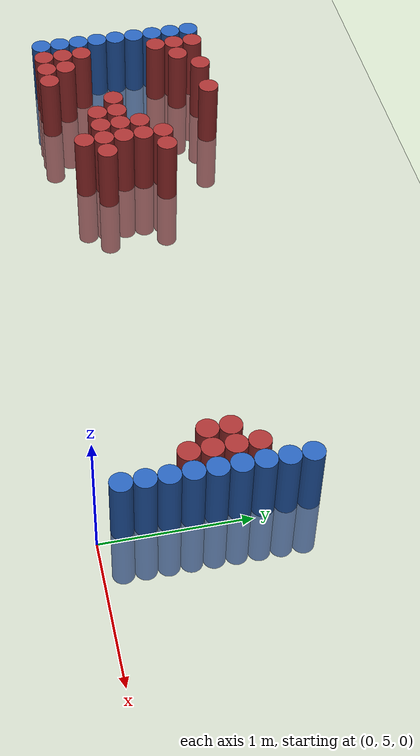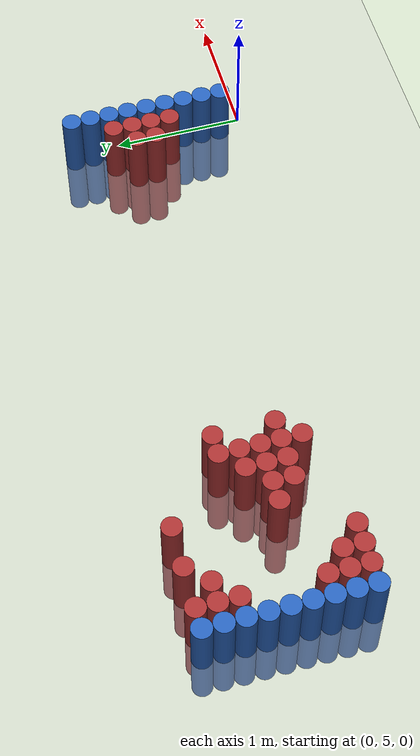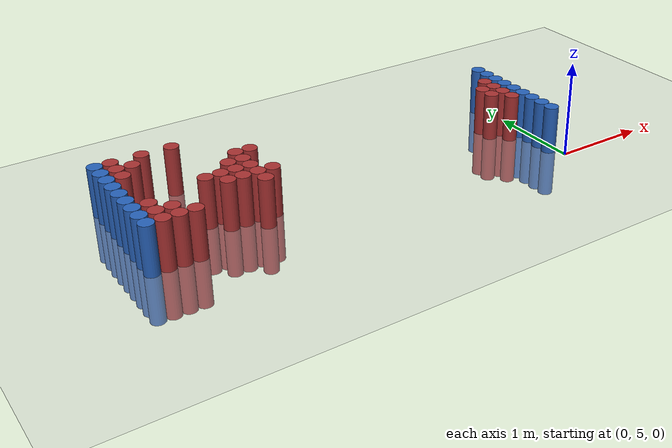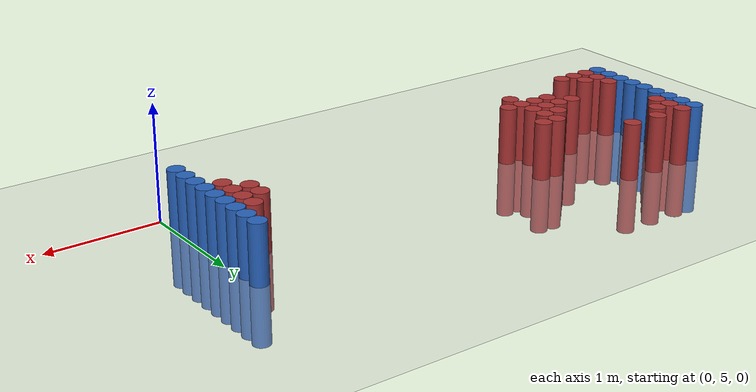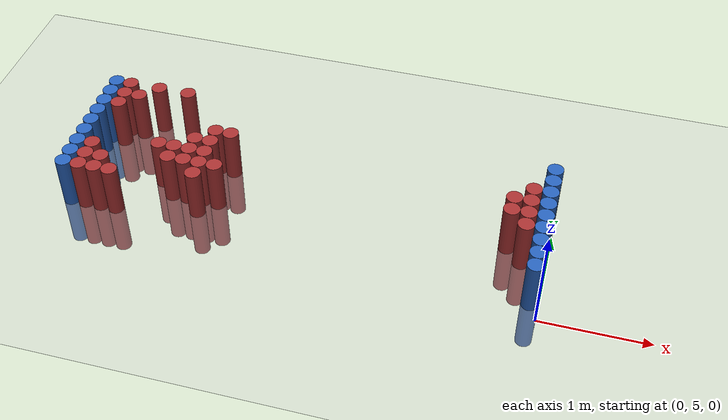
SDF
<sdf version="1.6">
 <world name="default">
  <model name="ground_plane">
   <static>1</static>
   <link name="link">
    <collision name="collision">
     <geometry><plane><normal>0 0 1</normal><size>100 100</size></plane></geometry>
     <surface><friction><ode><mu>100</mu><mu2>50</mu2></ode></friction></surface>
    </collision>
    <visual name="visual">
     <cast_shadows>0</cast_shadows>
     <geometry><plane><normal>0 0 1</normal><size>100 100</size></plane></geometry>
     <material>
      <script><uri>file://media/materials/scripts/gazebo.material</uri><name>Gazebo/Grey</name></script>
     </material>
    </visual>
   </link>
  </model>
  <model name="unit_cylinder_97">
   <static>1</static>
   <pose>-4.425000 5.325000 0.000000 0.000000 0.000000 0.000000</pose>
   <link name="link">
    <inertial>
     <mass>1</mass>
     <inertia><ixx>0.145833</ixx><ixy>0</ixy><ixz>0</ixz><iyy>0.145833</iyy><iyz>0</iyz><izz>0.125</izz></inertia>
    </inertial>
    <collision name="collision">
     <geometry><cylinder><radius>0.075000</radius><length>1</length></cylinder></geometry>
    </collision>
    <visual name="visual">
     <geometry><cylinder><radius>0.075000</radius><length>1</length></cylinder></geometry>
     <material>
      <ambient>0.152000 0.379000 0.720000 1</ambient>
      <diffuse>0.152000 0.379000 0.720000 1</diffuse>
     </material>
     <material>
      <script><name>Gazebo/Grey</name><uri>file://media/materials/scripts/gazebo.material</uri></script>
     </material>
    </visual>
   </link>
  </model>
  <model name="unit_cylinder_98">
   <static>1</static>
   <pose>-4.425000 5.475000 0.000000 0.000000 0.000000 0.000000</pose>
   <link name="link">
    <inertial>
     <mass>1</mass>
     <inertia><ixx>0.145833</ixx><ixy>0</ixy><ixz>0</ixz><iyy>0.145833</iyy><iyz>0</iyz><izz>0.125</izz></inertia>
    </inertial>
    <collision name="collision">
     <geometry><cylinder><radius>0.075000</radius><length>1</length></cylinder></geometry>
    </collision>
    <visual name="visual">
     <geometry><cylinder><radius>0.075000</radius><length>1</length></cylinder></geometry>
     <material>
      <ambient>0.152000 0.379000 0.720000 1</ambient>
      <diffuse>0.152000 0.379000 0.720000 1</diffuse>
     </material>
     <material>
      <script><name>Gazebo/Grey</name><uri>file://media/materials/scripts/gazebo.material</uri></script>
     </material>
    </visual>
   </link>
  </model>
  <model name="unit_cylinder_99">
   <static>1</static>
   <pose>-4.425000 5.625000 0.000000 0.000000 0.000000 0.000000</pose>
   <link name="link">
    <inertial>
     <mass>1</mass>
     <inertia><ixx>0.145833</ixx><ixy>0</ixy><ixz>0</ixz><iyy>0.145833</iyy><iyz>0</iyz><izz>0.125</izz></inertia>
    </inertial>
    <collision name="collision">
     <geometry><cylinder><radius>0.075000</radius><length>1</length></cylinder></geometry>
    </collision>
    <visual name="visual">
     <geometry><cylinder><radius>0.075000</radius><length>1</length></cylinder></geometry>
     <material>
      <ambient>0.152000 0.379000 0.720000 1</ambient>
      <diffuse>0.152000 0.379000 0.720000 1</diffuse>
     </material>
     <material>
      <script><name>Gazebo/Grey</name><uri>file://media/materials/scripts/gazebo.material</uri></script>
     </material>
    </visual>
   </link>
  </model>
  <model name="unit_cylinder_100">
   <static>1</static>
   <pose>-4.425000 5.775000 0.000000 0.000000 0.000000 0.000000</pose>
   <link name="link">
    <inertial>
     <mass>1</mass>
     <inertia><ixx>0.145833</ixx><ixy>0</ixy><ixz>0</ixz><iyy>0.145833</iyy><iyz>0</iyz><izz>0.125</izz></inertia>
    </inertial>
    <collision name="collision">
     <geometry><cylinder><radius>0.075000</radius><length>1</length></cylinder></geometry>
    </collision>
    <visual name="visual">
     <geometry><cylinder><radius>0.075000</radius><length>1</length></cylinder></geometry>
     <material>
      <ambient>0.152000 0.379000 0.720000 1</ambient>
      <diffuse>0.152000 0.379000 0.720000 1</diffuse>
     </material>
     <material>
      <script><name>Gazebo/Grey</name><uri>file://media/materials/scripts/gazebo.material</uri></script>
     </material>
    </visual>
   </link>
  </model>
  <model name="unit_cylinder_101">
   <static>1</static>
   <pose>-4.425000 5.925000 0.000000 0.000000 0.000000 0.000000</pose>
   <link name="link">
    <inertial>
     <mass>1</mass>
     <inertia><ixx>0.145833</ixx><ixy>0</ixy><ixz>0</ixz><iyy>0.145833</iyy><iyz>0</iyz><izz>0.125</izz></inertia>
    </inertial>
    <collision name="collision">
     <geometry><cylinder><radius>0.075000</radius><length>1</length></cylinder></geometry>
    </collision>
    <visual name="visual">
     <geometry><cylinder><radius>0.075000</radius><length>1</length></cylinder></geometry>
     <material>
      <ambient>0.152000 0.379000 0.720000 1</ambient>
      <diffuse>0.152000 0.379000 0.720000 1</diffuse>
     </material>
     <material>
      <script><name>Gazebo/Grey</name><uri>file://media/materials/scripts/gazebo.material</uri></script>
     </material>
    </visual>
   </link>
  </model>
  <model name="unit_cylinder_102">
   <static>1</static>
   <pose>-4.425000 6.075000 0.000000 0.000000 0.000000 0.000000</pose>
   <link name="link">
    <inertial>
     <mass>1</mass>
     <inertia><ixx>0.145833</ixx><ixy>0</ixy><ixz>0</ixz><iyy>0.145833</iyy><iyz>0</iyz><izz>0.125</izz></inertia>
    </inertial>
    <collision name="collision">
     <geometry><cylinder><radius>0.075000</radius><length>1</length></cylinder></geometry>
    </collision>
    <visual name="visual">
     <geometry><cylinder><radius>0.075000</radius><length>1</length></cylinder></geometry>
     <material>
      <ambient>0.152000 0.379000 0.720000 1</ambient>
      <diffuse>0.152000 0.379000 0.720000 1</diffuse>
     </material>
     <material>
      <script><name>Gazebo/Grey</name><uri>file://media/materials/scripts/gazebo.material</uri></script>
     </material>
    </visual>
   </link>
  </model>
  <model name="unit_cylinder_103">
   <static>1</static>
   <pose>-4.425000 6.225000 0.000000 0.000000 0.000000 0.000000</pose>
   <link name="link">
    <inertial>
     <mass>1</mass>
     <inertia><ixx>0.145833</ixx><ixy>0</ixy><ixz>0</ixz><iyy>0.145833</iyy><iyz>0</iyz><izz>0.125</izz></inertia>
    </inertial>
    <collision name="collision">
     <geometry><cylinder><radius>0.075000</radius><length>1</length></cylinder></geometry>
    </collision>
    <visual name="visual">
     <geometry><cylinder><radius>0.075000</radius><length>1</length></cylinder></geometry>
     <material>
      <ambient>0.152000 0.379000 0.720000 1</ambient>
      <diffuse>0.152000 0.379000 0.720000 1</diffuse>
     </material>
     <material>
      <script><name>Gazebo/Grey</name><uri>file://media/materials/scripts/gazebo.material</uri></script>
     </material>
    </visual>
   </link>
  </model>
  <model name="unit_cylinder_104">
   <static>1</static>
   <pose>-4.425000 6.375000 0.000000 0.000000 0.000000 0.000000</pose>
   <link name="link">
    <inertial>
     <mass>1</mass>
     <inertia><ixx>0.145833</ixx><ixy>0</ixy><ixz>0</ixz><iyy>0.145833</iyy><iyz>0</iyz><izz>0.125</izz></inertia>
    </inertial>
    <collision name="collision">
     <geometry><cylinder><radius>0.075000</radius><length>1</length></cylinder></geometry>
    </collision>
    <visual name="visual">
     <geometry><cylinder><radius>0.075000</radius><length>1</length></cylinder></geometry>
     <material>
      <ambient>0.152000 0.379000 0.720000 1</ambient>
      <diffuse>0.152000 0.379000 0.720000 1</diffuse>
     </material>
     <material>
      <script><name>Gazebo/Grey</name><uri>file://media/materials/scripts/gazebo.material</uri></script>
     </material>
    </visual>
   </link>
  </model>
  <model name="unit_cylinder_105">
   <static>1</static>
   <pose>-4.425000 6.525000 0.000000 0.000000 0.000000 0.000000</pose>
   <link name="link">
    <inertial>
     <mass>1</mass>
     <inertia><ixx>0.145833</ixx><ixy>0</ixy><ixz>0</ixz><iyy>0.145833</iyy><iyz>0</iyz><izz>0.125</izz></inertia>
    </inertial>
    <collision name="collision">
     <geometry><cylinder><radius>0.075000</radius><length>1</length></cylinder></geometry>
    </collision>
    <visual name="visual">
     <geometry><cylinder><radius>0.075000</radius><length>1</length></cylinder></geometry>
     <material>
      <ambient>0.152000 0.379000 0.720000 1</ambient>
      <diffuse>0.152000 0.379000 0.720000 1</diffuse>
     </material>
     <material>
      <script><name>Gazebo/Grey</name><uri>file://media/materials/scripts/gazebo.material</uri></script>
     </material>
    </visual>
   </link>
  </model>
  <model name="unit_cylinder_127">
   <static>1</static>
   <pose>-4.275000 5.325000 0.000000 0.000000 0.000000 0.000000</pose>
   <link name="link">
    <inertial>
     <mass>1</mass>
     <inertia><ixx>0.145833</ixx><ixy>0</ixy><ixz>0</ixz><iyy>0.145833</iyy><iyz>0</iyz><izz>0.125</izz></inertia>
    </inertial>
    <collision name="collision">
     <geometry><cylinder><radius>0.075000</radius><length>1</length></cylinder></geometry>
    </collision>
    <visual name="visual">
     <geometry><cylinder><radius>0.075000</radius><length>1</length></cylinder></geometry>
     <material>
      <ambient>0.648000 0.192000 0.192000 1</ambient>
      <diffuse>0.648000 0.192000 0.192000 1</diffuse>
     </material>
     <material>
      <script><name>Gazebo/Grey</name><uri>file://media/materials/scripts/gazebo.material</uri></script>
     </material>
    </visual>
   </link>
  </model>
  <model name="unit_cylinder_128">
   <static>1</static>
   <pose>-4.275000 5.475000 0.000000 0.000000 0.000000 0.000000</pose>
   <link name="link">
    <inertial>
     <mass>1</mass>
     <inertia><ixx>0.145833</ixx><ixy>0</ixy><ixz>0</ixz><iyy>0.145833</iyy><iyz>0</iyz><izz>0.125</izz></inertia>
    </inertial>
    <collision name="collision">
     <geometry><cylinder><radius>0.075000</radius><length>1</length></cylinder></geometry>
    </collision>
    <visual name="visual">
     <geometry><cylinder><radius>0.075000</radius><length>1</length></cylinder></geometry>
     <material>
      <ambient>0.648000 0.192000 0.192000 1</ambient>
      <diffuse>0.648000 0.192000 0.192000 1</diffuse>
     </material>
     <material>
      <script><name>Gazebo/Grey</name><uri>file://media/materials/scripts/gazebo.material</uri></script>
     </material>
    </visual>
   </link>
  </model>
  <model name="unit_cylinder_129">
   <static>1</static>
   <pose>-4.275000 5.625000 0.000000 0.000000 0.000000 0.000000</pose>
   <link name="link">
    <inertial>
     <mass>1</mass>
     <inertia><ixx>0.145833</ixx><ixy>0</ixy><ixz>0</ixz><iyy>0.145833</iyy><iyz>0</iyz><izz>0.125</izz></inertia>
    </inertial>
    <collision name="collision">
     <geometry><cylinder><radius>0.075000</radius><length>1</length></cylinder></geometry>
    </collision>
    <visual name="visual">
     <geometry><cylinder><radius>0.075000</radius><length>1</length></cylinder></geometry>
     <material>
      <ambient>0.648000 0.192000 0.192000 1</ambient>
      <diffuse>0.648000 0.192000 0.192000 1</diffuse>
     </material>
     <material>
      <script><name>Gazebo/Grey</name><uri>file://media/materials/scripts/gazebo.material</uri></script>
     </material>
    </visual>
   </link>
  </model>
  <model name="unit_cylinder_130">
   <static>1</static>
   <pose>-4.275000 6.225000 0.000000 0.000000 0.000000 0.000000</pose>
   <link name="link">
    <inertial>
     <mass>1</mass>
     <inertia><ixx>0.145833</ixx><ixy>0</ixy><ixz>0</ixz><iyy>0.145833</iyy><iyz>0</iyz><izz>0.125</izz></inertia>
    </inertial>
    <collision name="collision">
     <geometry><cylinder><radius>0.075000</radius><length>1</length></cylinder></geometry>
    </collision>
    <visual name="visual">
     <geometry><cylinder><radius>0.075000</radius><length>1</length></cylinder></geometry>
     <material>
      <ambient>0.648000 0.192000 0.192000 1</ambient>
      <diffuse>0.648000 0.192000 0.192000 1</diffuse>
     </material>
     <material>
      <script><name>Gazebo/Grey</name><uri>file://media/materials/scripts/gazebo.material</uri></script>
     </material>
    </visual>
   </link>
  </model>
  <model name="unit_cylinder_131">
   <static>1</static>
   <pose>-4.275000 6.375000 0.000000 0.000000 0.000000 0.000000</pose>
   <link name="link">
    <inertial>
     <mass>1</mass>
     <inertia><ixx>0.145833</ixx><ixy>0</ixy><ixz>0</ixz><iyy>0.145833</iyy><iyz>0</iyz><izz>0.125</izz></inertia>
    </inertial>
    <collision name="collision">
     <geometry><cylinder><radius>0.075000</radius><length>1</length></cylinder></geometry>
    </collision>
    <visual name="visual">
     <geometry><cylinder><radius>0.075000</radius><length>1</length></cylinder></geometry>
     <material>
      <ambient>0.648000 0.192000 0.192000 1</ambient>
      <diffuse>0.648000 0.192000 0.192000 1</diffuse>
     </material>
     <material>
      <script><name>Gazebo/Grey</name><uri>file://media/materials/scripts/gazebo.material</uri></script>
     </material>
    </visual>
   </link>
  </model>
  <model name="unit_cylinder_132">
   <static>1</static>
   <pose>-4.275000 6.525000 0.000000 0.000000 0.000000 0.000000</pose>
   <link name="link">
    <inertial>
     <mass>1</mass>
     <inertia><ixx>0.145833</ixx><ixy>0</ixy><ixz>0</ixz><iyy>0.145833</iyy><iyz>0</iyz><izz>0.125</izz></inertia>
    </inertial>
    <collision name="collision">
     <geometry><cylinder><radius>0.075000</radius><length>1</length></cylinder></geometry>
    </collision>
    <visual name="visual">
     <geometry><cylinder><radius>0.075000</radius><length>1</length></cylinder></geometry>
     <material>
      <ambient>0.648000 0.192000 0.192000 1</ambient>
      <diffuse>0.648000 0.192000 0.192000 1</diffuse>
     </material>
     <material>
      <script><name>Gazebo/Grey</name><uri>file://media/materials/scripts/gazebo.material</uri></script>
     </material>
    </visual>
   </link>
  </model>
  <model name="unit_cylinder_137">
   <static>1</static>
   <pose>-4.125000 5.325000 0.000000 0.000000 0.000000 0.000000</pose>
   <link name="link">
    <inertial>
     <mass>1</mass>
     <inertia><ixx>0.145833</ixx><ixy>0</ixy><ixz>0</ixz><iyy>0.145833</iyy><iyz>0</iyz><izz>0.125</izz></inertia>
    </inertial>
    <collision name="collision">
     <geometry><cylinder><radius>0.075000</radius><length>1</length></cylinder></geometry>
    </collision>
    <visual name="visual">
     <geometry><cylinder><radius>0.075000</radius><length>1</length></cylinder></geometry>
     <material>
      <ambient>0.648000 0.192000 0.192000 1</ambient>
      <diffuse>0.648000 0.192000 0.192000 1</diffuse>
     </material>
     <material>
      <script><name>Gazebo/Grey</name><uri>file://media/materials/scripts/gazebo.material</uri></script>
     </material>
    </visual>
   </link>
  </model>
  <model name="unit_cylinder_138">
   <static>1</static>
   <pose>-4.125000 5.475000 0.000000 0.000000 0.000000 0.000000</pose>
   <link name="link">
    <inertial>
     <mass>1</mass>
     <inertia><ixx>0.145833</ixx><ixy>0</ixy><ixz>0</ixz><iyy>0.145833</iyy><iyz>0</iyz><izz>0.125</izz></inertia>
    </inertial>
    <collision name="collision">
     <geometry><cylinder><radius>0.075000</radius><length>1</length></cylinder></geometry>
    </collision>
    <visual name="visual">
     <geometry><cylinder><radius>0.075000</radius><length>1</length></cylinder></geometry>
     <material>
      <ambient>0.648000 0.192000 0.192000 1</ambient>
      <diffuse>0.648000 0.192000 0.192000 1</diffuse>
     </material>
     <material>
      <script><name>Gazebo/Grey</name><uri>file://media/materials/scripts/gazebo.material</uri></script>
     </material>
    </visual>
   </link>
  </model>
  <model name="unit_cylinder_139">
   <static>1</static>
   <pose>-4.125000 6.375000 0.000000 0.000000 0.000000 0.000000</pose>
   <link name="link">
    <inertial>
     <mass>1</mass>
     <inertia><ixx>0.145833</ixx><ixy>0</ixy><ixz>0</ixz><iyy>0.145833</iyy><iyz>0</iyz><izz>0.125</izz></inertia>
    </inertial>
    <collision name="collision">
     <geometry><cylinder><radius>0.075000</radius><length>1</length></cylinder></geometry>
    </collision>
    <visual name="visual">
     <geometry><cylinder><radius>0.075000</radius><length>1</length></cylinder></geometry>
     <material>
      <ambient>0.648000 0.192000 0.192000 1</ambient>
      <diffuse>0.648000 0.192000 0.192000 1</diffuse>
     </material>
     <material>
      <script><name>Gazebo/Grey</name><uri>file://media/materials/scripts/gazebo.material</uri></script>
     </material>
    </visual>
   </link>
  </model>
  <model name="unit_cylinder_142">
   <static>1</static>
   <pose>-3.975000 5.325000 0.000000 0.000000 0.000000 0.000000</pose>
   <link name="link">
    <inertial>
     <mass>1</mass>
     <inertia><ixx>0.145833</ixx><ixy>0</ixy><ixz>0</ixz><iyy>0.145833</iyy><iyz>0</iyz><izz>0.125</izz></inertia>
    </inertial>
    <collision name="collision">
     <geometry><cylinder><radius>0.075000</radius><length>1</length></cylinder></geometry>
    </collision>
    <visual name="visual">
     <geometry><cylinder><radius>0.075000</radius><length>1</length></cylinder></geometry>
     <material>
      <ambient>0.648000 0.192000 0.192000 1</ambient>
      <diffuse>0.648000 0.192000 0.192000 1</diffuse>
     </material>
     <material>
      <script><name>Gazebo/Grey</name><uri>file://media/materials/scripts/gazebo.material</uri></script>
     </material>
    </visual>
   </link>
  </model>
  <model name="unit_cylinder_143">
   <static>1</static>
   <pose>-3.975000 6.525000 0.000000 0.000000 0.000000 0.000000</pose>
   <link name="link">
    <inertial>
     <mass>1</mass>
     <inertia><ixx>0.145833</ixx><ixy>0</ixy><ixz>0</ixz><iyy>0.145833</iyy><iyz>0</iyz><izz>0.125</izz></inertia>
    </inertial>
    <collision name="collision">
     <geometry><cylinder><radius>0.075000</radius><length>1</length></cylinder></geometry>
    </collision>
    <visual name="visual">
     <geometry><cylinder><radius>0.075000</radius><length>1</length></cylinder></geometry>
     <material>
      <ambient>0.648000 0.192000 0.192000 1</ambient>
      <diffuse>0.648000 0.192000 0.192000 1</diffuse>
     </material>
     <material>
      <script><name>Gazebo/Grey</name><uri>file://media/materials/scripts/gazebo.material</uri></script>
     </material>
    </visual>
   </link>
  </model>
  <model name="unit_cylinder_149">
   <static>1</static>
   <pose>-3.675000 5.775000 0.000000 0.000000 0.000000 0.000000</pose>
   <link name="link">
    <inertial>
     <mass>1</mass>
     <inertia><ixx>0.145833</ixx><ixy>0</ixy><ixz>0</ixz><iyy>0.145833</iyy><iyz>0</iyz><izz>0.125</izz></inertia>
    </inertial>
    <collision name="collision">
     <geometry><cylinder><radius>0.075000</radius><length>1</length></cylinder></geometry>
    </collision>
    <visual name="visual">
     <geometry><cylinder><radius>0.075000</radius><length>1</length></cylinder></geometry>
     <material>
      <ambient>0.648000 0.192000 0.192000 1</ambient>
      <diffuse>0.648000 0.192000 0.192000 1</diffuse>
     </material>
     <material>
      <script><name>Gazebo/Grey</name><uri>file://media/materials/scripts/gazebo.material</uri></script>
     </material>
    </visual>
   </link>
  </model>
  <model name="unit_cylinder_150">
   <static>1</static>
   <pose>-3.675000 6.525000 0.000000 0.000000 0.000000 0.000000</pose>
   <link name="link">
    <inertial>
     <mass>1</mass>
     <inertia><ixx>0.145833</ixx><ixy>0</ixy><ixz>0</ixz><iyy>0.145833</iyy><iyz>0</iyz><izz>0.125</izz></inertia>
    </inertial>
    <collision name="collision">
     <geometry><cylinder><radius>0.075000</radius><length>1</length></cylinder></geometry>
    </collision>
    <visual name="visual">
     <geometry><cylinder><radius>0.075000</radius><length>1</length></cylinder></geometry>
     <material>
      <ambient>0.648000 0.192000 0.192000 1</ambient>
      <diffuse>0.648000 0.192000 0.192000 1</diffuse>
     </material>
     <material>
      <script><name>Gazebo/Grey</name><uri>file://media/materials/scripts/gazebo.material</uri></script>
     </material>
    </visual>
   </link>
  </model>
  <model name="unit_cylinder_153">
   <static>1</static>
   <pose>-3.525000 5.625000 0.000000 0.000000 0.000000 0.000000</pose>
   <link name="link">
    <inertial>
     <mass>1</mass>
     <inertia><ixx>0.145833</ixx><ixy>0</ixy><ixz>0</ixz><iyy>0.145833</iyy><iyz>0</iyz><izz>0.125</izz></inertia>
    </inertial>
    <collision name="collision">
     <geometry><cylinder><radius>0.075000</radius><length>1</length></cylinder></geometry>
    </collision>
    <visual name="visual">
     <geometry><cylinder><radius>0.075000</radius><length>1</length></cylinder></geometry>
     <material>
      <ambient>0.648000 0.192000 0.192000 1</ambient>
      <diffuse>0.648000 0.192000 0.192000 1</diffuse>
     </material>
     <material>
      <script><name>Gazebo/Grey</name><uri>file://media/materials/scripts/gazebo.material</uri></script>
     </material>
    </visual>
   </link>
  </model>
  <model name="unit_cylinder_154">
   <static>1</static>
   <pose>-3.525000 5.775000 0.000000 0.000000 0.000000 0.000000</pose>
   <link name="link">
    <inertial>
     <mass>1</mass>
     <inertia><ixx>0.145833</ixx><ixy>0</ixy><ixz>0</ixz><iyy>0.145833</iyy><iyz>0</iyz><izz>0.125</izz></inertia>
    </inertial>
    <collision name="collision">
     <geometry><cylinder><radius>0.075000</radius><length>1</length></cylinder></geometry>
    </collision>
    <visual name="visual">
     <geometry><cylinder><radius>0.075000</radius><length>1</length></cylinder></geometry>
     <material>
      <ambient>0.648000 0.192000 0.192000 1</ambient>
      <diffuse>0.648000 0.192000 0.192000 1</diffuse>
     </material>
     <material>
      <script><name>Gazebo/Grey</name><uri>file://media/materials/scripts/gazebo.material</uri></script>
     </material>
    </visual>
   </link>
  </model>
  <model name="unit_cylinder_156">
   <static>1</static>
   <pose>-3.375000 5.625000 0.000000 0.000000 0.000000 0.000000</pose>
   <link name="link">
    <inertial>
     <mass>1</mass>
     <inertia><ixx>0.145833</ixx><ixy>0</ixy><ixz>0</ixz><iyy>0.145833</iyy><iyz>0</iyz><izz>0.125</izz></inertia>
    </inertial>
    <collision name="collision">
     <geometry><cylinder><radius>0.075000</radius><length>1</length></cylinder></geometry>
    </collision>
    <visual name="visual">
     <geometry><cylinder><radius>0.075000</radius><length>1</length></cylinder></geometry>
     <material>
      <ambient>0.648000 0.192000 0.192000 1</ambient>
      <diffuse>0.648000 0.192000 0.192000 1</diffuse>
     </material>
     <material>
      <script><name>Gazebo/Grey</name><uri>file://media/materials/scripts/gazebo.material</uri></script>
     </material>
    </visual>
   </link>
  </model>
  <model name="unit_cylinder_157">
   <static>1</static>
   <pose>-3.375000 5.775000 0.000000 0.000000 0.000000 0.000000</pose>
   <link name="link">
    <inertial>
     <mass>1</mass>
     <inertia><ixx>0.145833</ixx><ixy>0</ixy><ixz>0</ixz><iyy>0.145833</iyy><iyz>0</iyz><izz>0.125</izz></inertia>
    </inertial>
    <collision name="collision">
     <geometry><cylinder><radius>0.075000</radius><length>1</length></cylinder></geometry>
    </collision>
    <visual name="visual">
     <geometry><cylinder><radius>0.075000</radius><length>1</length></cylinder></geometry>
     <material>
      <ambient>0.648000 0.192000 0.192000 1</ambient>
      <diffuse>0.648000 0.192000 0.192000 1</diffuse>
     </material>
     <material>
      <script><name>Gazebo/Grey</name><uri>file://media/materials/scripts/gazebo.material</uri></script>
     </material>
    </visual>
   </link>
  </model>
  <model name="unit_cylinder_158">
   <static>1</static>
   <pose>-3.375000 5.925000 0.000000 0.000000 0.000000 0.000000</pose>
   <link name="link">
    <inertial>
     <mass>1</mass>
     <inertia><ixx>0.145833</ixx><ixy>0</ixy><ixz>0</ixz><iyy>0.145833</iyy><iyz>0</iyz><izz>0.125</izz></inertia>
    </inertial>
    <collision name="collision">
     <geometry><cylinder><radius>0.075000</radius><length>1</length></cylinder></geometry>
    </collision>
    <visual name="visual">
     <geometry><cylinder><radius>0.075000</radius><length>1</length></cylinder></geometry>
     <material>
      <ambient>0.648000 0.192000 0.192000 1</ambient>
      <diffuse>0.648000 0.192000 0.192000 1</diffuse>
     </material>
     <material>
      <script><name>Gazebo/Grey</name><uri>file://media/materials/scripts/gazebo.material</uri></script>
     </material>
    </visual>
   </link>
  </model>
  <model name="unit_cylinder_161">
   <static>1</static>
   <pose>-3.225000 5.475000 0.000000 0.000000 0.000000 0.000000</pose>
   <link name="link">
    <inertial>
     <mass>1</mass>
     <inertia><ixx>0.145833</ixx><ixy>0</ixy><ixz>0</ixz><iyy>0.145833</iyy><iyz>0</iyz><izz>0.125</izz></inertia>
    </inertial>
    <collision name="collision">
     <geometry><cylinder><radius>0.075000</radius><length>1</length></cylinder></geometry>
    </collision>
    <visual name="visual">
     <geometry><cylinder><radius>0.075000</radius><length>1</length></cylinder></geometry>
     <material>
      <ambient>0.648000 0.192000 0.192000 1</ambient>
      <diffuse>0.648000 0.192000 0.192000 1</diffuse>
     </material>
     <material>
      <script><name>Gazebo/Grey</name><uri>file://media/materials/scripts/gazebo.material</uri></script>
     </material>
    </visual>
   </link>
  </model>
  <model name="unit_cylinder_162">
   <static>1</static>
   <pose>-3.225000 5.625000 0.000000 0.000000 0.000000 0.000000</pose>
   <link name="link">
    <inertial>
     <mass>1</mass>
     <inertia><ixx>0.145833</ixx><ixy>0</ixy><ixz>0</ixz><iyy>0.145833</iyy><iyz>0</iyz><izz>0.125</izz></inertia>
    </inertial>
    <collision name="collision">
     <geometry><cylinder><radius>0.075000</radius><length>1</length></cylinder></geometry>
    </collision>
    <visual name="visual">
     <geometry><cylinder><radius>0.075000</radius><length>1</length></cylinder></geometry>
     <material>
      <ambient>0.648000 0.192000 0.192000 1</ambient>
      <diffuse>0.648000 0.192000 0.192000 1</diffuse>
     </material>
     <material>
      <script><name>Gazebo/Grey</name><uri>file://media/materials/scripts/gazebo.material</uri></script>
     </material>
    </visual>
   </link>
  </model>
  <model name="unit_cylinder_163">
   <static>1</static>
   <pose>-3.225000 5.775000 0.000000 0.000000 0.000000 0.000000</pose>
   <link name="link">
    <inertial>
     <mass>1</mass>
     <inertia><ixx>0.145833</ixx><ixy>0</ixy><ixz>0</ixz><iyy>0.145833</iyy><iyz>0</iyz><izz>0.125</izz></inertia>
    </inertial>
    <collision name="collision">
     <geometry><cylinder><radius>0.075000</radius><length>1</length></cylinder></geometry>
    </collision>
    <visual name="visual">
     <geometry><cylinder><radius>0.075000</radius><length>1</length></cylinder></geometry>
     <material>
      <ambient>0.648000 0.192000 0.192000 1</ambient>
      <diffuse>0.648000 0.192000 0.192000 1</diffuse>
     </material>
     <material>
      <script><name>Gazebo/Grey</name><uri>file://media/materials/scripts/gazebo.material</uri></script>
     </material>
    </visual>
   </link>
  </model>
  <model name="unit_cylinder_164">
   <static>1</static>
   <pose>-3.225000 5.925000 0.000000 0.000000 0.000000 0.000000</pose>
   <link name="link">
    <inertial>
     <mass>1</mass>
     <inertia><ixx>0.145833</ixx><ixy>0</ixy><ixz>0</ixz><iyy>0.145833</iyy><iyz>0</iyz><izz>0.125</izz></inertia>
    </inertial>
    <collision name="collision">
     <geometry><cylinder><radius>0.075000</radius><length>1</length></cylinder></geometry>
    </collision>
    <visual name="visual">
     <geometry><cylinder><radius>0.075000</radius><length>1</length></cylinder></geometry>
     <material>
      <ambient>0.648000 0.192000 0.192000 1</ambient>
      <diffuse>0.648000 0.192000 0.192000 1</diffuse>
     </material>
     <material>
      <script><name>Gazebo/Grey</name><uri>file://media/materials/scripts/gazebo.material</uri></script>
     </material>
    </visual>
   </link>
  </model>
  <model name="unit_cylinder_165">
   <static>1</static>
   <pose>-3.225000 6.075000 0.000000 0.000000 0.000000 0.000000</pose>
   <link name="link">
    <inertial>
     <mass>1</mass>
     <inertia><ixx>0.145833</ixx><ixy>0</ixy><ixz>0</ixz><iyy>0.145833</iyy><iyz>0</iyz><izz>0.125</izz></inertia>
    </inertial>
    <collision name="collision">
     <geometry><cylinder><radius>0.075000</radius><length>1</length></cylinder></geometry>
    </collision>
    <visual name="visual">
     <geometry><cylinder><radius>0.075000</radius><length>1</length></cylinder></geometry>
     <material>
      <ambient>0.648000 0.192000 0.192000 1</ambient>
      <diffuse>0.648000 0.192000 0.192000 1</diffuse>
     </material>
     <material>
      <script><name>Gazebo/Grey</name><uri>file://media/materials/scripts/gazebo.material</uri></script>
     </material>
    </visual>
   </link>
  </model>
  <model name="unit_cylinder_169">
   <static>1</static>
   <pose>-3.075000 5.625000 0.000000 0.000000 0.000000 0.000000</pose>
   <link name="link">
    <inertial>
     <mass>1</mass>
     <inertia><ixx>0.145833</ixx><ixy>0</ixy><ixz>0</ixz><iyy>0.145833</iyy><iyz>0</iyz><izz>0.125</izz></inertia>
    </inertial>
    <collision name="collision">
     <geometry><cylinder><radius>0.075000</radius><length>1</length></cylinder></geometry>
    </collision>
    <visual name="visual">
     <geometry><cylinder><radius>0.075000</radius><length>1</length></cylinder></geometry>
     <material>
      <ambient>0.648000 0.192000 0.192000 1</ambient>
      <diffuse>0.648000 0.192000 0.192000 1</diffuse>
     </material>
     <material>
      <script><name>Gazebo/Grey</name><uri>file://media/materials/scripts/gazebo.material</uri></script>
     </material>
    </visual>
   </link>
  </model>
  <model name="unit_cylinder_170">
   <static>1</static>
   <pose>-3.075000 6.075000 0.000000 0.000000 0.000000 0.000000</pose>
   <link name="link">
    <inertial>
     <mass>1</mass>
     <inertia><ixx>0.145833</ixx><ixy>0</ixy><ixz>0</ixz><iyy>0.145833</iyy><iyz>0</iyz><izz>0.125</izz></inertia>
    </inertial>
    <collision name="collision">
     <geometry><cylinder><radius>0.075000</radius><length>1</length></cylinder></geometry>
    </collision>
    <visual name="visual">
     <geometry><cylinder><radius>0.075000</radius><length>1</length></cylinder></geometry>
     <material>
      <ambient>0.648000 0.192000 0.192000 1</ambient>
      <diffuse>0.648000 0.192000 0.192000 1</diffuse>
     </material>
     <material>
      <script><name>Gazebo/Grey</name><uri>file://media/materials/scripts/gazebo.material</uri></script>
     </material>
    </visual>
   </link>
  </model>
  <model name="unit_cylinder_200">
   <static>1</static>
   <pose>-0.375000 5.775000 0.000000 0.000000 0.000000 0.000000</pose>
   <link name="link">
    <inertial>
     <mass>1</mass>
     <inertia><ixx>0.145833</ixx><ixy>0</ixy><ixz>0</ixz><iyy>0.145833</iyy><iyz>0</iyz><izz>0.125</izz></inertia>
    </inertial>
    <collision name="collision">
     <geometry><cylinder><radius>0.075000</radius><length>1</length></cylinder></geometry>
    </collision>
    <visual name="visual">
     <geometry><cylinder><radius>0.075000</radius><length>1</length></cylinder></geometry>
     <material>
      <ambient>0.648000 0.192000 0.192000 1</ambient>
      <diffuse>0.648000 0.192000 0.192000 1</diffuse>
     </material>
     <material>
      <script><name>Gazebo/Grey</name><uri>file://media/materials/scripts/gazebo.material</uri></script>
     </material>
    </visual>
   </link>
  </model>
  <model name="unit_cylinder_201">
   <static>1</static>
   <pose>-0.375000 5.925000 0.000000 0.000000 0.000000 0.000000</pose>
   <link name="link">
    <inertial>
     <mass>1</mass>
     <inertia><ixx>0.145833</ixx><ixy>0</ixy><ixz>0</ixz><iyy>0.145833</iyy><iyz>0</iyz><izz>0.125</izz></inertia>
    </inertial>
    <collision name="collision">
     <geometry><cylinder><radius>0.075000</radius><length>1</length></cylinder></geometry>
    </collision>
    <visual name="visual">
     <geometry><cylinder><radius>0.075000</radius><length>1</length></cylinder></geometry>
     <material>
      <ambient>0.648000 0.192000 0.192000 1</ambient>
      <diffuse>0.648000 0.192000 0.192000 1</diffuse>
     </material>
     <material>
      <script><name>Gazebo/Grey</name><uri>file://media/materials/scripts/gazebo.material</uri></script>
     </material>
    </visual>
   </link>
  </model>
  <model name="unit_cylinder_206">
   <static>1</static>
   <pose>-0.225000 5.625000 0.000000 0.000000 0.000000 0.000000</pose>
   <link name="link">
    <inertial>
     <mass>1</mass>
     <inertia><ixx>0.145833</ixx><ixy>0</ixy><ixz>0</ixz><iyy>0.145833</iyy><iyz>0</iyz><izz>0.125</izz></inertia>
    </inertial>
    <collision name="collision">
     <geometry><cylinder><radius>0.075000</radius><length>1</length></cylinder></geometry>
    </collision>
    <visual name="visual">
     <geometry><cylinder><radius>0.075000</radius><length>1</length></cylinder></geometry>
     <material>
      <ambient>0.648000 0.192000 0.192000 1</ambient>
      <diffuse>0.648000 0.192000 0.192000 1</diffuse>
     </material>
     <material>
      <script><name>Gazebo/Grey</name><uri>file://media/materials/scripts/gazebo.material</uri></script>
     </material>
    </visual>
   </link>
  </model>
  <model name="unit_cylinder_207">
   <static>1</static>
   <pose>-0.225000 5.775000 0.000000 0.000000 0.000000 0.000000</pose>
   <link name="link">
    <inertial>
     <mass>1</mass>
     <inertia><ixx>0.145833</ixx><ixy>0</ixy><ixz>0</ixz><iyy>0.145833</iyy><iyz>0</iyz><izz>0.125</izz></inertia>
    </inertial>
    <collision name="collision">
     <geometry><cylinder><radius>0.075000</radius><length>1</length></cylinder></geometry>
    </collision>
    <visual name="visual">
     <geometry><cylinder><radius>0.075000</radius><length>1</length></cylinder></geometry>
     <material>
      <ambient>0.648000 0.192000 0.192000 1</ambient>
      <diffuse>0.648000 0.192000 0.192000 1</diffuse>
     </material>
     <material>
      <script><name>Gazebo/Grey</name><uri>file://media/materials/scripts/gazebo.material</uri></script>
     </material>
    </visual>
   </link>
  </model>
  <model name="unit_cylinder_208">
   <static>1</static>
   <pose>-0.225000 5.925000 0.000000 0.000000 0.000000 0.000000</pose>
   <link name="link">
    <inertial>
     <mass>1</mass>
     <inertia><ixx>0.145833</ixx><ixy>0</ixy><ixz>0</ixz><iyy>0.145833</iyy><iyz>0</iyz><izz>0.125</izz></inertia>
    </inertial>
    <collision name="collision">
     <geometry><cylinder><radius>0.075000</radius><length>1</length></cylinder></geometry>
    </collision>
    <visual name="visual">
     <geometry><cylinder><radius>0.075000</radius><length>1</length></cylinder></geometry>
     <material>
      <ambient>0.648000 0.192000 0.192000 1</ambient>
      <diffuse>0.648000 0.192000 0.192000 1</diffuse>
     </material>
     <material>
      <script><name>Gazebo/Grey</name><uri>file://media/materials/scripts/gazebo.material</uri></script>
     </material>
    </visual>
   </link>
  </model>
  <model name="unit_cylinder_209">
   <static>1</static>
   <pose>-0.225000 6.075000 0.000000 0.000000 0.000000 0.000000</pose>
   <link name="link">
    <inertial>
     <mass>1</mass>
     <inertia><ixx>0.145833</ixx><ixy>0</ixy><ixz>0</ixz><iyy>0.145833</iyy><iyz>0</iyz><izz>0.125</izz></inertia>
    </inertial>
    <collision name="collision">
     <geometry><cylinder><radius>0.075000</radius><length>1</length></cylinder></geometry>
    </collision>
    <visual name="visual">
     <geometry><cylinder><radius>0.075000</radius><length>1</length></cylinder></geometry>
     <material>
      <ambient>0.648000 0.192000 0.192000 1</ambient>
      <diffuse>0.648000 0.192000 0.192000 1</diffuse>
     </material>
     <material>
      <script><name>Gazebo/Grey</name><uri>file://media/materials/scripts/gazebo.material</uri></script>
     </material>
    </visual>
   </link>
  </model>
  <model name="unit_cylinder_216">
   <static>1</static>
   <pose>-0.075000 5.175000 0.000000 0.000000 0.000000 0.000000</pose>
   <link name="link">
    <inertial>
     <mass>1</mass>
     <inertia><ixx>0.145833</ixx><ixy>0</ixy><ixz>0</ixz><iyy>0.145833</iyy><iyz>0</iyz><izz>0.125</izz></inertia>
    </inertial>
    <collision name="collision">
     <geometry><cylinder><radius>0.075000</radius><length>1</length></cylinder></geometry>
    </collision>
    <visual name="visual">
     <geometry><cylinder><radius>0.075000</radius><length>1</length></cylinder></geometry>
     <material>
      <ambient>0.152000 0.379000 0.720000 1</ambient>
      <diffuse>0.152000 0.379000 0.720000 1</diffuse>
     </material>
     <material>
      <script><name>Gazebo/Grey</name><uri>file://media/materials/scripts/gazebo.material</uri></script>
     </material>
    </visual>
   </link>
  </model>
  <model name="unit_cylinder_217">
   <static>1</static>
   <pose>-0.075000 5.325000 0.000000 0.000000 0.000000 0.000000</pose>
   <link name="link">
    <inertial>
     <mass>1</mass>
     <inertia><ixx>0.145833</ixx><ixy>0</ixy><ixz>0</ixz><iyy>0.145833</iyy><iyz>0</iyz><izz>0.125</izz></inertia>
    </inertial>
    <collision name="collision">
     <geometry><cylinder><radius>0.075000</radius><length>1</length></cylinder></geometry>
    </collision>
    <visual name="visual">
     <geometry><cylinder><radius>0.075000</radius><length>1</length></cylinder></geometry>
     <material>
      <ambient>0.152000 0.379000 0.720000 1</ambient>
      <diffuse>0.152000 0.379000 0.720000 1</diffuse>
     </material>
     <material>
      <script><name>Gazebo/Grey</name><uri>file://media/materials/scripts/gazebo.material</uri></script>
     </material>
    </visual>
   </link>
  </model>
  <model name="unit_cylinder_218">
   <static>1</static>
   <pose>-0.075000 5.475000 0.000000 0.000000 0.000000 0.000000</pose>
   <link name="link">
    <inertial>
     <mass>1</mass>
     <inertia><ixx>0.145833</ixx><ixy>0</ixy><ixz>0</ixz><iyy>0.145833</iyy><iyz>0</iyz><izz>0.125</izz></inertia>
    </inertial>
    <collision name="collision">
     <geometry><cylinder><radius>0.075000</radius><length>1</length></cylinder></geometry>
    </collision>
    <visual name="visual">
     <geometry><cylinder><radius>0.075000</radius><length>1</length></cylinder></geometry>
     <material>
      <ambient>0.152000 0.379000 0.720000 1</ambient>
      <diffuse>0.152000 0.379000 0.720000 1</diffuse>
     </material>
     <material>
      <script><name>Gazebo/Grey</name><uri>file://media/materials/scripts/gazebo.material</uri></script>
     </material>
    </visual>
   </link>
  </model>
  <model name="unit_cylinder_219">
   <static>1</static>
   <pose>-0.075000 5.625000 0.000000 0.000000 0.000000 0.000000</pose>
   <link name="link">
    <inertial>
     <mass>1</mass>
     <inertia><ixx>0.145833</ixx><ixy>0</ixy><ixz>0</ixz><iyy>0.145833</iyy><iyz>0</iyz><izz>0.125</izz></inertia>
    </inertial>
    <collision name="collision">
     <geometry><cylinder><radius>0.075000</radius><length>1</length></cylinder></geometry>
    </collision>
    <visual name="visual">
     <geometry><cylinder><radius>0.075000</radius><length>1</length></cylinder></geometry>
     <material>
      <ambient>0.152000 0.379000 0.720000 1</ambient>
      <diffuse>0.152000 0.379000 0.720000 1</diffuse>
     </material>
     <material>
      <script><name>Gazebo/Grey</name><uri>file://media/materials/scripts/gazebo.material</uri></script>
     </material>
    </visual>
   </link>
  </model>
  <model name="unit_cylinder_220">
   <static>1</static>
   <pose>-0.075000 5.775000 0.000000 0.000000 0.000000 0.000000</pose>
   <link name="link">
    <inertial>
     <mass>1</mass>
     <inertia><ixx>0.145833</ixx><ixy>0</ixy><ixz>0</ixz><iyy>0.145833</iyy><iyz>0</iyz><izz>0.125</izz></inertia>
    </inertial>
    <collision name="collision">
     <geometry><cylinder><radius>0.075000</radius><length>1</length></cylinder></geometry>
    </collision>
    <visual name="visual">
     <geometry><cylinder><radius>0.075000</radius><length>1</length></cylinder></geometry>
     <material>
      <ambient>0.152000 0.379000 0.720000 1</ambient>
      <diffuse>0.152000 0.379000 0.720000 1</diffuse>
     </material>
     <material>
      <script><name>Gazebo/Grey</name><uri>file://media/materials/scripts/gazebo.material</uri></script>
     </material>
    </visual>
   </link>
  </model>
  <model name="unit_cylinder_221">
   <static>1</static>
   <pose>-0.075000 5.925000 0.000000 0.000000 0.000000 0.000000</pose>
   <link name="link">
    <inertial>
     <mass>1</mass>
     <inertia><ixx>0.145833</ixx><ixy>0</ixy><ixz>0</ixz><iyy>0.145833</iyy><iyz>0</iyz><izz>0.125</izz></inertia>
    </inertial>
    <collision name="collision">
     <geometry><cylinder><radius>0.075000</radius><length>1</length></cylinder></geometry>
    </collision>
    <visual name="visual">
     <geometry><cylinder><radius>0.075000</radius><length>1</length></cylinder></geometry>
     <material>
      <ambient>0.152000 0.379000 0.720000 1</ambient>
      <diffuse>0.152000 0.379000 0.720000 1</diffuse>
     </material>
     <material>
      <script><name>Gazebo/Grey</name><uri>file://media/materials/scripts/gazebo.material</uri></script>
     </material>
    </visual>
   </link>
  </model>
  <model name="unit_cylinder_222">
   <static>1</static>
   <pose>-0.075000 6.075000 0.000000 0.000000 0.000000 0.000000</pose>
   <link name="link">
    <inertial>
     <mass>1</mass>
     <inertia><ixx>0.145833</ixx><ixy>0</ixy><ixz>0</ixz><iyy>0.145833</iyy><iyz>0</iyz><izz>0.125</izz></inertia>
    </inertial>
    <collision name="collision">
     <geometry><cylinder><radius>0.075000</radius><length>1</length></cylinder></geometry>
    </collision>
    <visual name="visual">
     <geometry><cylinder><radius>0.075000</radius><length>1</length></cylinder></geometry>
     <material>
      <ambient>0.152000 0.379000 0.720000 1</ambient>
      <diffuse>0.152000 0.379000 0.720000 1</diffuse>
     </material>
     <material>
      <script><name>Gazebo/Grey</name><uri>file://media/materials/scripts/gazebo.material</uri></script>
     </material>
    </visual>
   </link>
  </model>
  <model name="unit_cylinder_223">
   <static>1</static>
   <pose>-0.075000 6.225000 0.000000 0.000000 0.000000 0.000000</pose>
   <link name="link">
    <inertial>
     <mass>1</mass>
     <inertia><ixx>0.145833</ixx><ixy>0</ixy><ixz>0</ixz><iyy>0.145833</iyy><iyz>0</iyz><izz>0.125</izz></inertia>
    </inertial>
    <collision name="collision">
     <geometry><cylinder><radius>0.075000</radius><length>1</length></cylinder></geometry>
    </collision>
    <visual name="visual">
     <geometry><cylinder><radius>0.075000</radius><length>1</length></cylinder></geometry>
     <material>
      <ambient>0.152000 0.379000 0.720000 1</ambient>
      <diffuse>0.152000 0.379000 0.720000 1</diffuse>
     </material>
     <material>
      <script><name>Gazebo/Grey</name><uri>file://media/materials/scripts/gazebo.material</uri></script>
     </material>
    </visual>
   </link>
  </model>
  <model name="unit_cylinder_224">
   <static>1</static>
   <pose>-0.075000 6.375000 0.000000 0.000000 0.000000 0.000000</pose>
   <link name="link">
    <inertial>
     <mass>1</mass>
     <inertia><ixx>0.145833</ixx><ixy>0</ixy><ixz>0</ixz><iyy>0.145833</iyy><iyz>0</iyz><izz>0.125</izz></inertia>
    </inertial>
    <collision name="collision">
     <geometry><cylinder><radius>0.075000</radius><length>1</length></cylinder></geometry>
    </collision>
    <visual name="visual">
     <geometry><cylinder><radius>0.075000</radius><length>1</length></cylinder></geometry>
     <material>
      <ambient>0.152000 0.379000 0.720000 1</ambient>
      <diffuse>0.152000 0.379000 0.720000 1</diffuse>
     </material>
     <material>
      <script><name>Gazebo/Grey</name><uri>file://media/materials/scripts/gazebo.material</uri></script>
     </material>
    </visual>
   </link>
  </model>
 </world>
</sdf>
